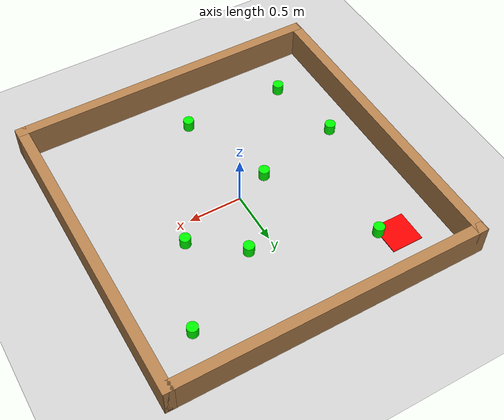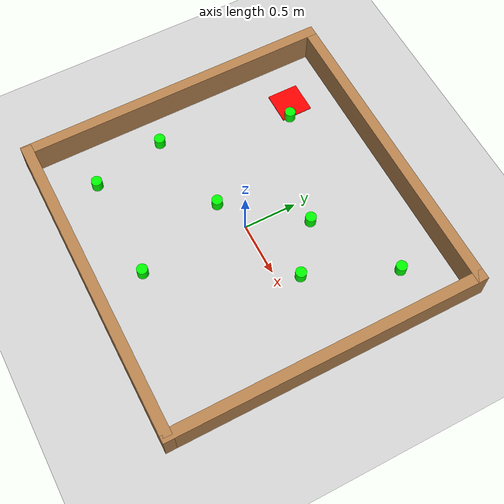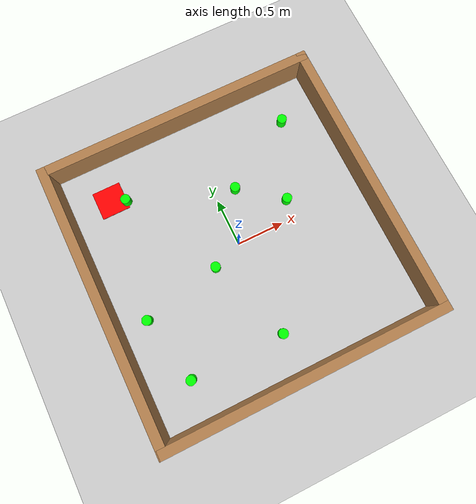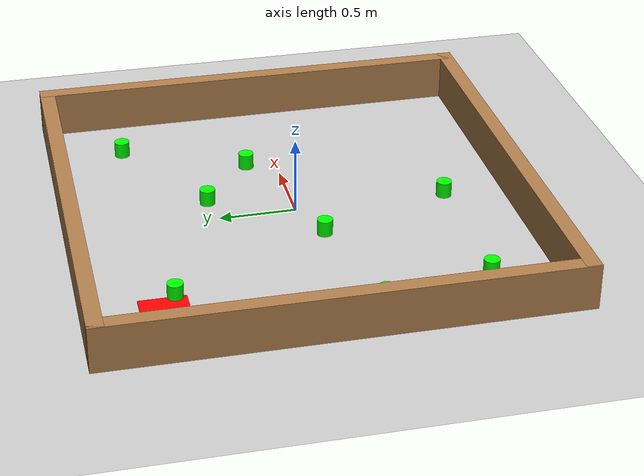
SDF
<?xml version="1.0" ?>
<sdf version='1.6'>
    <world name='default'>
        <light name='sun' type='directional'>
            <cast_shadows>1</cast_shadows>
            <pose frame=''>0 0 10 0 -0 0</pose>
            <diffuse>0.8 0.8 0.8 1</diffuse>
            <specular>0.2 0.2 0.2 1</specular>
            <attenuation>
                <range>1000</range>
                <constant>0.9</constant>
                <linear>0.01</linear>
                <quadratic>0.001</quadratic>
            </attenuation>
            <direction>-0.5 0.1 -0.9</direction>
        </light>
        <model name='ground_plane'>
            <static>1</static>
            <link name='link'>
                <collision name='collision'>
                    <geometry>
                        <plane>
                            <normal>0 0 1</normal>
                            <size>100 100</size>
                        </plane>
                    </geometry>
                    <surface>
                        <contact>
                            <collide_bitmask>65535</collide_bitmask>
                            <ode/>
                        </contact>
                        <friction>
                            <ode>
                                <mu>100</mu>
                                <mu2>50</mu2>
                            </ode>
                            <torsional>
                                <ode/>
                            </torsional>
                        </friction>
                        <bounce/>
                    </surface>
                    <max_contacts>10</max_contacts>
                </collision>
                <visual name='visual'>
                    <cast_shadows>0</cast_shadows>
                    <geometry>
                        <plane>
                            <normal>0 0 1</normal>
                            <size>100 100</size>
                        </plane>
                    </geometry>
                    <material>
                        <script>
                            <uri>file://media/materials/scripts/gazebo.material</uri>
                            <name>Gazebo/Grey</name>
                        </script>
                    </material>
                </visual>
                <self_collide>0</self_collide>
                <enable_wind>0</enable_wind>
                <kinematic>0</kinematic>
            </link>
        </model>
        <gravity>0 0 -9.8</gravity>
        <magnetic_field>6e-06 2.3e-05 -4.2e-05</magnetic_field>
        <atmosphere type='adiabatic'/>
        <physics name='default_physics' default='0' type='ode'>
            <max_step_size>0.001</max_step_size>
            <real_time_factor>1</real_time_factor>
            <real_time_update_rate>1000</real_time_update_rate>
        </physics>
        <scene>
            <ambient>0.4 0.4 0.4 1</ambient>
            <background>0.7 0.7 0.7 1</background>
            <shadows>1</shadows>
        </scene>
        <wind/>
        <spherical_coordinates>
            <surface_model>EARTH_WGS84</surface_model>
            <latitude_deg>0</latitude_deg>
            <longitude_deg>0</longitude_deg>
            <elevation>0</elevation>
            <heading_deg>0</heading_deg>
        </spherical_coordinates>
        <model name="obstacle_1">
            <pose>-0.01 -1 0.0 0 0 0</pose>
            <static>0</static>
            <self_collide>0</self_collide>
            <enable_wind>0</enable_wind>
            <link name="link">
                <gravity>1</gravity>
                <kinematic>0</kinematic>
                <inertial>
                    <mass>1</mass>
                    <inertia>
                        <ixx>0</ixx>
                        <ixy>0</ixy>
                        <ixz>0</ixz>
                        <iyy>0</iyy>
                        <iyz>0</iyz>
                        <izz>0</izz>
                    </inertia>
                    <pose frame=''>0 0 0 0 -0 0</pose>
                </inertial>
                <collision name="collision">
                    <geometry>
			<cylinder>
			    <radius>0.0505</radius>
			    <length>0.2</length>
			</cylinder>
                    </geometry>
                    <surface>
                        <friction>
                            <ode>
                                <mu>0.0</mu>
                                <mu2>0.0</mu2>
                            </ode>
                        </friction>
                    </surface>
                </collision>
                <visual name="visual">
                    <geometry>
			<cylinder>
			    <radius>0.0505</radius>
			    <length>0.2</length>
			</cylinder>
                    </geometry>
                    <material>
                        <lighting>1</lighting>
                        <script>
                            <uri>file://media/materials/scripts/gazebo.material</uri>
                            <name>Gazebo/Grey</name>
                        </script>
                        <shader type='pixel'>
                            <normal_map>__default__</normal_map>
                        </shader>
                        <ambient>0.3 0.3 0.3 1</ambient>
                        <diffuse>0 1 0 1</diffuse>
                        <specular>0.01 0.01 0.01 1</specular>
                        <emissive>0 0 0 1</emissive>
                    </material>
                </visual>
            </link>
        </model>
        <model name="obstacle_2">
            <pose>-1.15 -0.3 0.0 0 0 0</pose>
            <static>0</static>
            <self_collide>0</self_collide>
            <enable_wind>0</enable_wind>
            <link name="link">
                <gravity>1</gravity>
                <kinematic>0</kinematic>
                <inertial>
                    <mass>1</mass>
                    <inertia>
                        <ixx>0</ixx>
                        <ixy>0</ixy>
                        <ixz>0</ixz>
                        <iyy>0</iyy>
                        <iyz>0</iyz>
                        <izz>0</izz>
                    </inertia>
                    <pose frame=''>0 0 0 0 -0 0</pose>
                </inertial>
                <collision name="collision">
                    <geometry>
			<cylinder>
			    <radius>0.0505</radius>
			    <length>0.2</length>
			</cylinder>
                    </geometry>
                    <surface>
                        <friction>
                            <ode>
                                <mu>0.0</mu>
                                <mu2>0.0</mu2>
                            </ode>
                        </friction>
                    </surface>
                </collision>
                <visual name="visual">
                    <geometry>
   			<cylinder>
			    <radius>0.0505</radius>
			    <length>0.2</length>
			</cylinder>
                    </geometry>
                    <material>
                        <lighting>1</lighting>
                        <script>
                            <uri>file://media/materials/scripts/gazebo.material</uri>
                            <name>Gazebo/Grey</name>
                        </script>
                        <shader type='pixel'>
                            <normal_map>__default__</normal_map>
                        </shader>
                        <ambient>0.3 0.3 0.3 1</ambient>
                        <diffuse>0 1 0 1</diffuse>
                        <specular>0.01 0.01 0.01 1</specular>
                        <emissive>0 0 0 1</emissive>
                    </material>
                </visual>
            </link>
        </model>
        <model name="obstacle_3">
            <pose>-0.32 -0.12 0.0 0 0 0</pose>
            <static>0</static>
            <self_collide>0</self_collide>
            <enable_wind>0</enable_wind>
            <link name="link">
                <gravity>1</gravity>
                <kinematic>0</kinematic>
                <inertial>
                    <mass>1</mass>
                    <inertia>
                        <ixx>0</ixx>
                        <ixy>0</ixy>
                        <ixz>0</ixz>
                        <iyy>0</iyy>
                        <iyz>0</iyz>
                        <izz>0</izz>
                    </inertia>
                    <pose frame=''>0 0 0 0 -0 0</pose>
                </inertial>
                <collision name="collision">
                    <geometry>
			<cylinder>
			    <radius>0.0505</radius>
			    <length>0.2</length>
			</cylinder>
                    </geometry>
                    <surface>
                        <friction>
                            <ode>
                                <mu>0.0</mu>
                                <mu2>0.0</mu2>
                            </ode>
                        </friction>
                    </surface>
                </collision>
                <visual name="visual">
                    <geometry>
			<cylinder>
			    <radius>0.0505</radius>
			    <length>0.2</length>
			</cylinder>
                    </geometry>
                    <material>
                        <lighting>1</lighting>
                        <script>
                            <uri>file://media/materials/scripts/gazebo.material</uri>
                            <name>Gazebo/Grey</name>
                        </script>
                        <shader type='pixel'>
                            <normal_map>__default__</normal_map>
                        </shader>
                        <ambient>0.3 0.3 0.3 1</ambient>
                        <diffuse>0 1 0 1</diffuse>
                        <specular>0.01 0.01 0.01 1</specular>
                        <emissive>0 0 0 1</emissive>
                    </material>
                </visual>
            </link>
        </model>
        <model name="obstacle_4">
            <pose>-0.85 0.92 0.0 0 0 0</pose>
            <static>0</static>
            <self_collide>0</self_collide>
            <enable_wind>0</enable_wind>
            <link name="link">
                <gravity>1</gravity>
                <kinematic>0</kinematic>
                <inertial>
                    <mass>1</mass>
                    <inertia>
                        <ixx>0</ixx>
                        <ixy>0</ixy>
                        <ixz>0</ixz>
                        <iyy>0</iyy>
                        <iyz>0</iyz>
                        <izz>0</izz>
                    </inertia>
                    <pose frame=''>0 0 0 0 -0 0</pose>
                </inertial>
                <collision name="collision">
                    <geometry>
			<cylinder>
			    <radius>0.0505</radius>
			    <length>0.2</length>
			</cylinder>
                    </geometry>
                    <surface>
                        <friction>
                            <ode>
                                <mu>0.0</mu>
                                <mu2>0.0</mu2>
                            </ode>
                        </friction>
                    </surface>
                </collision>
                <visual name="visual">
                    <geometry>
			<cylinder>
			    <radius>0.0505</radius>
			    <length>0.2</length>
			</cylinder>
                    </geometry>
                    <material>
                        <lighting>1</lighting>
                        <script>
                            <uri>file://media/materials/scripts/gazebo.material</uri>
                            <name>Gazebo/Grey</name>
                        </script>
                        <shader type='pixel'>
                            <normal_map>__default__</normal_map>
                        </shader>
                        <ambient>0.3 0.3 0.3 1</ambient>
                        <diffuse>0 1 0 1</diffuse>
                        <specular>0.01 0.01 0.01 1</specular>
                        <emissive>0 0 0 1</emissive>
                    </material>
                </visual>
            </link>
        </model>

        <model name="obstacle_5">
            <pose>-1.0 -1.0 0.0 0 0 0</pose>
            <static>0</static>
            <self_collide>0</self_collide>
            <enable_wind>0</enable_wind>
            <link name="link">
                <gravity>1</gravity>
                <kinematic>0</kinematic>
                <inertial>
                    <mass>1</mass>
                    <inertia>
                        <ixx>0</ixx>
                        <ixy>0</ixy>
                        <ixz>0</ixz>
                        <iyy>0</iyy>
                        <iyz>0</iyz>
                        <izz>0</izz>
                    </inertia>
                    <pose frame=''>0 0 0 0 -0 0</pose>
                </inertial>
                <collision name="collision">
                    <geometry>
			<cylinder>
			    <radius>0.0505</radius>
			    <length>0.2</length>
			</cylinder>
                    </geometry>
                    <surface>
                        <friction>
                            <ode>
                                <mu>0.0</mu>
                                <mu2>0.0</mu2>
                            </ode>
                        </friction>
                    </surface>
                </collision>
                <visual name="visual">
                    <geometry>
			<cylinder>
			    <radius>0.0505</radius>
			    <length>0.2</length>
			</cylinder>
                    </geometry>
                    <material>
                        <lighting>1</lighting>
                        <script>
                            <uri>file://media/materials/scripts/gazebo.material</uri>
                            <name>Gazebo/Grey</name>
                        </script>
                        <shader type='pixel'>
                            <normal_map>__default__</normal_map>
                        </shader>
                        <ambient>0.3 0.3 0.3 1</ambient>
                        <diffuse>0 1 0 1</diffuse>
                        <specular>0.01 0.01 0.01 1</specular>
                        <emissive>0 0 0 1</emissive>
                    </material>
                </visual>
            </link>
        </model>

        <model name="obstacle_6">
            <pose>0.65 0.2 0.0 0 0 0</pose>
            <static>0</static>
            <self_collide>0</self_collide>
            <enable_wind>0</enable_wind>
            <link name="link">
                <gravity>1</gravity>
                <kinematic>0</kinematic>
                <inertial>
                    <mass>1</mass>
                    <inertia>
                        <ixx>0</ixx>
                        <ixy>0</ixy>
                        <ixz>0</ixz>
                        <iyy>0</iyy>
                        <iyz>0</iyz>
                        <izz>0</izz>
                    </inertia>
                    <pose frame=''>0 0 0 0 -0 0</pose>
                </inertial>
                <collision name="collision">
                    <geometry>
			<cylinder>
			    <radius>0.0505</radius>
			    <length>0.2</length>
			</cylinder>
                    </geometry>
                    <surface>
                        <friction>
                            <ode>
                                <mu>0.0</mu>
                                <mu2>0.0</mu2>
                            </ode>
                        </friction>
                    </surface>
                </collision>
                <visual name="visual">
                    <geometry>
			<cylinder>
			    <radius>0.0505</radius>
			    <length>0.2</length>
			</cylinder>
                    </geometry>
                    <material>
                        <lighting>1</lighting>
                        <script>
                            <uri>file://media/materials/scripts/gazebo.material</uri>
                            <name>Gazebo/Grey</name>
                        </script>
                        <shader type='pixel'>
                            <normal_map>__default__</normal_map>
                        </shader>
                        <ambient>0.3 0.3 0.3 1</ambient>
                        <diffuse>0 1 0 1</diffuse>
                        <specular>0.01 0.01 0.01 1</specular>
                        <emissive>0 0 0 1</emissive>
                    </material>
                </visual>
            </link>
        </model>
        <model name="obstacle_7">
            <pose>0.22 0.54 0.0 0 0 0</pose>
            <static>0</static>
            <self_collide>0</self_collide>
            <enable_wind>0</enable_wind>
            <link name="link">
                <gravity>1</gravity>
                <kinematic>0</kinematic>
                <inertial>
                    <mass>1</mass>
                    <inertia>
                        <ixx>0</ixx>
                        <ixy>0</ixy>
                        <ixz>0</ixz>
                        <iyy>0</iyy>
                        <iyz>0</iyz>
                        <izz>0</izz>
                    </inertia>
                    <pose frame=''>0 0 0 0 -0 0</pose>
                </inertial>
                <collision name="collision">
                    <geometry>
			<cylinder>
			    <radius>0.0505</radius>
			    <length>0.2</length>
			</cylinder>
                    </geometry>
                    <surface>
                        <friction>
                            <ode>
                                <mu>0.0</mu>
                                <mu2>0.0</mu2>
                            </ode>
                        </friction>
                    </surface>
                </collision>
                <visual name="visual">
                    <geometry>
			<cylinder>
			    <radius>0.0505</radius>
			    <length>0.2</length>
			</cylinder>
                    </geometry>
                    <material>
                        <lighting>1</lighting>
                        <script>
                            <uri>file://media/materials/scripts/gazebo.material</uri>
                            <name>Gazebo/Grey</name>
                        </script>
                        <shader type='pixel'>
                            <normal_map>__default__</normal_map>
                        </shader>
                        <ambient>0.3 0.3 0.3 1</ambient>
                        <diffuse>0 1 0 1</diffuse>
                        <specular>0.01 0.01 0.01 1</specular>
                        <emissive>0 0 0 1</emissive>
                    </material>
                </visual>
            </link>
        </model>
        <model name="obstacle_8">
            <pose>1.0 1.0 0.0 0 0 0</pose>
            <static>0</static>
            <self_collide>0</self_collide>
            <enable_wind>0</enable_wind>
            <link name="link">
                <gravity>1</gravity>
                <kinematic>0</kinematic>
                <inertial>
                    <mass>1</mass>
                    <inertia>
                        <ixx>0</ixx>
                        <ixy>0</ixy>
                        <ixz>0</ixz>
                        <iyy>0</iyy>
                        <iyz>0</iyz>
                        <izz>0</izz>
                    </inertia>
                    <pose frame=''>0 0 0 0 -0 0</pose>
                </inertial>
                <collision name="collision">
                    <geometry>
			<cylinder>
			    <radius>0.0505</radius>
			    <length>0.2</length>
			</cylinder>
                    </geometry>
                    <surface>
                        <friction>
                            <ode>
                                <mu>0.0</mu>
                                <mu2>0.0</mu2>
                            </ode>
                        </friction>
                    </surface>
                </collision>
                <visual name="visual">
                    <geometry>
			<cylinder>
			    <radius>0.0505</radius>
			    <length>0.2</length>
			</cylinder>
                    </geometry>
                    <material>
                        <lighting>1</lighting>
                        <script>
                            <uri>file://media/materials/scripts/gazebo.material</uri>
                            <name>Gazebo/Grey</name>
                        </script>
                        <shader type='pixel'>
                            <normal_map>__default__</normal_map>
                        </shader>
                        <ambient>0.3 0.3 0.3 1</ambient>
                        <diffuse>0 1 0 1</diffuse>
                        <specular>0.01 0.01 0.01 1</specular>
                        <emissive>0 0 0 1</emissive>
                    </material>
                </visual>
            </link>
        </model>
        <model name='square_room'>
            <pose frame=''>-0.006074 0.005376 0 0 -0 0</pose>
            <link name='Wall_0'>
                <collision name='Wall_0_Collision'>
                    <geometry>
                        <box>
                            <size>3 0.1 0.3</size>
                        </box>
                    </geometry>
                    <pose frame=''>0 0 0.15 0 -0 0</pose>
                    <max_contacts>10</max_contacts>
                    <surface>
                        <contact>
                            <ode/>
                        </contact>
                        <bounce/>
                        <friction>
                            <torsional>
                                <ode/>
                            </torsional>
                            <ode/>
                        </friction>
                    </surface>
                </collision>
                <visual name='Wall_0_Visual'>
                    <pose frame=''>0 0 0.15 0 -0 0</pose>
                    <geometry>
                        <box>
                            <size>3 0.1 0.3</size>
                        </box>
                    </geometry>
                    <material>
                        <script>
                            <uri>file://media/materials/scripts/gazebo.material</uri>
                            <name>Gazebo/Wood</name>
                        </script>
                        <ambient>1 1 1 1</ambient>
                    </material>
                    <meta>
                        <layer>0</layer>
                    </meta>
                </visual>
                <pose frame=''>-0 1.45 0 0 -0 0</pose>
                <self_collide>0</self_collide>
                <enable_wind>0</enable_wind>
                <kinematic>0</kinematic>
            </link>
            <link name='Wall_1'>
                <collision name='Wall_1_Collision'>
                    <geometry>
                        <box>
                            <size>3 0.1 0.3</size>
                        </box>
                    </geometry>
                    <pose frame=''>0 0 0.15 0 -0 0</pose>
                    <max_contacts>10</max_contacts>
                    <surface>
                        <contact>
                            <ode/>
                        </contact>
                        <bounce/>
                        <friction>
                            <torsional>
                                <ode/>
                            </torsional>
                            <ode/>
                        </friction>
                    </surface>
                </collision>
                <visual name='Wall_1_Visual'>
                    <pose frame=''>0 0 0.15 0 -0 0</pose>
                    <geometry>
                        <box>
                            <size>3 0.1 0.3</size>
                        </box>
                    </geometry>
                    <material>
                        <script>
                            <uri>file://media/materials/scripts/gazebo.material</uri>
                            <name>Gazebo/Wood</name>
                        </script>
                        <ambient>1 1 1 1</ambient>
                    </material>
                    <meta>
                        <layer>0</layer>
                    </meta>
                </visual>
                <pose frame=''>1.455 0 0 0 -0 -1.5708</pose>
                <self_collide>0</self_collide>
                <enable_wind>0</enable_wind>
                <kinematic>0</kinematic>
            </link>
            <link name='Wall_2'>
                <collision name='Wall_2_Collision'>
                    <geometry>
                        <box>
                            <size>3 0.1 0.3</size>
                        </box>
                    </geometry>
                    <pose frame=''>0 0 0.15 0 -0 0</pose>
                    <max_contacts>10</max_contacts>
                    <surface>
                        <contact>
                            <ode/>
                        </contact>
                        <bounce/>
                        <friction>
                            <torsional>
                                <ode/>
                            </torsional>
                            <ode/>
                        </friction>
                    </surface>
                </collision>
                <visual name='Wall_2_Visual'>
                    <pose frame=''>0 0 0.15 0 -0 0</pose>
                    <geometry>
                        <box>
                            <size>3 0.1 0.3</size>
                        </box>
                    </geometry>
                    <material>
                        <script>
                            <uri>file://media/materials/scripts/gazebo.material</uri>
                            <name>Gazebo/Wood</name>
                        </script>
                        <ambient>1 1 1 1</ambient>
                    </material>
                    <meta>
                        <layer>0</layer>
                    </meta>
                </visual>
                <pose frame=''>0.005 -1.45 0 0 -0 3.14159</pose>
                <self_collide>0</self_collide>
                <enable_wind>0</enable_wind>
                <kinematic>0</kinematic>
            </link>
            <link name='Wall_3'>
                <collision name='Wall_3_Collision'>
                    <geometry>
                        <box>
                            <size>3 0.1 0.3</size>
                        </box>
                    </geometry>
                    <pose frame=''>0 0 0.15 0 -0 0</pose>
                    <max_contacts>10</max_contacts>
                    <surface>
                        <contact>
                            <ode/>
                        </contact>
                        <bounce/>
                        <friction>
                            <torsional>
                                <ode/>
                            </torsional>
                            <ode/>
                        </friction>
                    </surface>
                </collision>
                <visual name='Wall_3_Visual'>
                    <pose frame=''>0 0 0.15 0 -0 0</pose>
                    <geometry>
                        <box>
                            <size>3 0.1 0.3</size>
                        </box>
                    </geometry>
                    <material>
                        <script>
                            <uri>file://media/materials/scripts/gazebo.material</uri>
                            <name>Gazebo/Wood</name>
                        </script>
                        <ambient>1 1 1 1</ambient>
                    </material>
                    <meta>
                        <layer>0</layer>
                    </meta>
                </visual>
                <pose frame=''>-1.455 0 0 0 -0 1.5708</pose>
                <self_collide>0</self_collide>
                <enable_wind>0</enable_wind>
                <kinematic>0</kinematic>
            </link>
            <static>1</static>
        </model>
        <model name='goal_region'>
            <link name='link_0'>
                <inertial>
                    <mass>1</mass>
                    <inertia>
                        <ixx>0.166667</ixx>
                        <ixy>0</ixy>
                        <ixz>0</ixz>
                        <iyy>0.166667</iyy>
                        <iyz>0</iyz>
                        <izz>0.166667</izz>
                    </inertia>
                    <pose frame=''>0 0 0 0 -0 0</pose>
                </inertial>
                <pose frame=''>0 0 0 0 -0 0</pose>
                <gravity>0</gravity>
                <self_collide>0</self_collide>
                <kinematic>0</kinematic>
                <enable_wind>0</enable_wind>
                <visual name='visual'>
                    <pose frame=''>0 0 0 0 -0 0</pose>
                    <geometry>
                        <box>
                            <size>0.3 0.3 0.01</size>
                        </box>
                    </geometry>
                    <material>
                        <lighting>1</lighting>
                        <script>
                            <uri>file://media/materials/scripts/gazebo.material</uri>
                            <name>Gazebo/Grey</name>
                        </script>
                        <shader type='pixel'>
                            <normal_map>__default__</normal_map>
                        </shader>
                        <ambient>0.3 0.3 0.3 1</ambient>
                        <diffuse>1 0 0 1</diffuse>
                        <specular>0.01 0.01 0.01 1</specular>
                        <emissive>0 0 0 1</emissive>
                    </material>
                    <transparency>0</transparency>
                    <cast_shadows>1</cast_shadows>
                </visual>
            </link>
            <static>0</static>
            <allow_auto_disable>1</allow_auto_disable>
            <pose frame=''>-1 1 0 0 -0 0</pose>
        </model>

        <model name='way_region'>
            <link name='link_0'>
                <inertial>
                    <mass>1</mass>
                    <inertia>
                        <ixx>0.166667</ixx>
                        <ixy>0</ixy>
                        <ixz>0</ixz>
                        <iyy>0.166667</iyy>
                        <iyz>0</iyz>
                        <izz>0.166667</izz>
                    </inertia>
                    <pose frame=''>0 0 0 0 -0 0</pose>
                </inertial>
                <pose frame=''>0 0 0 0 -0 0</pose>
                <gravity>0</gravity>
                <self_collide>0</self_collide>
                <kinematic>0</kinematic>
                <enable_wind>0</enable_wind>
                <visual name='visual'>
                    <pose frame=''>0 0 0 0 -0 0</pose>
                    <geometry>
                        <box>
                            <size>0.3 0.3 0.01</size>
                        </box>
                    </geometry>
                    <material>
                        <lighting>1</lighting>
                        <script>
                            <uri>file://media/materials/scripts/gazebo.material</uri>
                            <name>Gazebo/Grey</name>
                        </script>
                        <shader type='pixel'>
                            <normal_map>__default__</normal_map>
                        </shader>
                        <ambient>0.3 0.3 0.3 1</ambient>
                        <diffuse>1 0 0 1</diffuse>
                        <specular>0.01 0.01 0.01 1</specular>
                        <emissive>0 0 0 1</emissive>
                    </material>
                    <transparency>1</transparency>
                    <cast_shadows>1</cast_shadows>
                </visual>
            </link>
            <static>0</static>
            <allow_auto_disable>1</allow_auto_disable>
            <pose frame=''>0 0 0 0 -0 0</pose>
        </model>
    </world>
</sdf>
